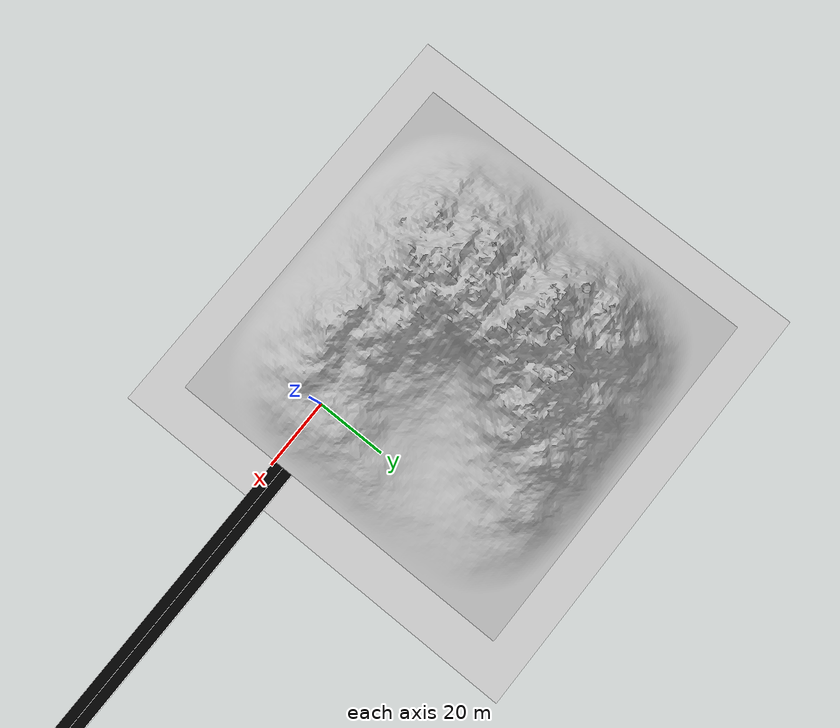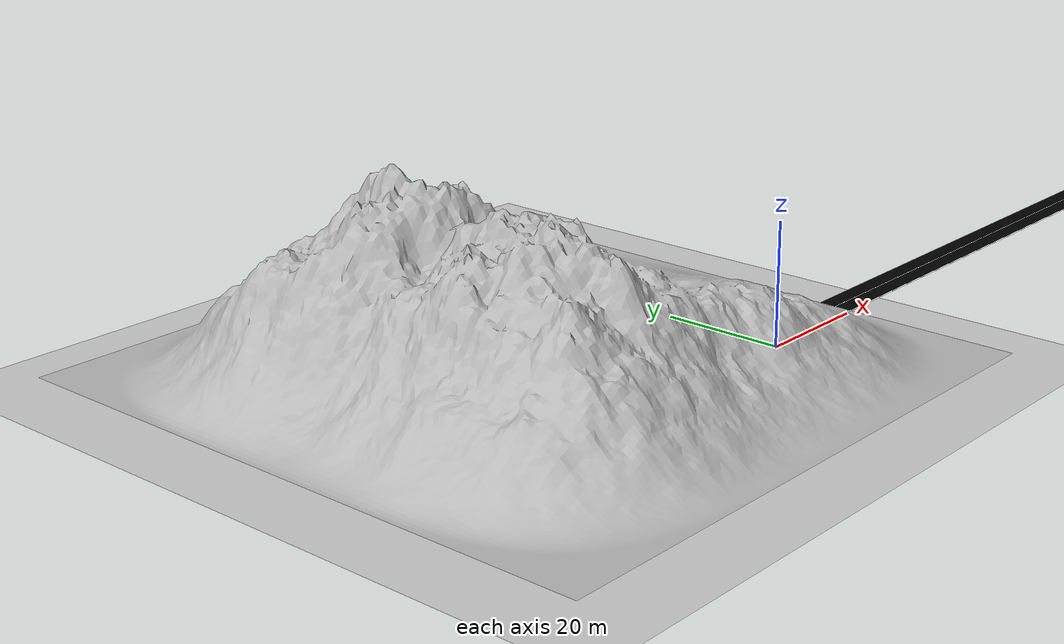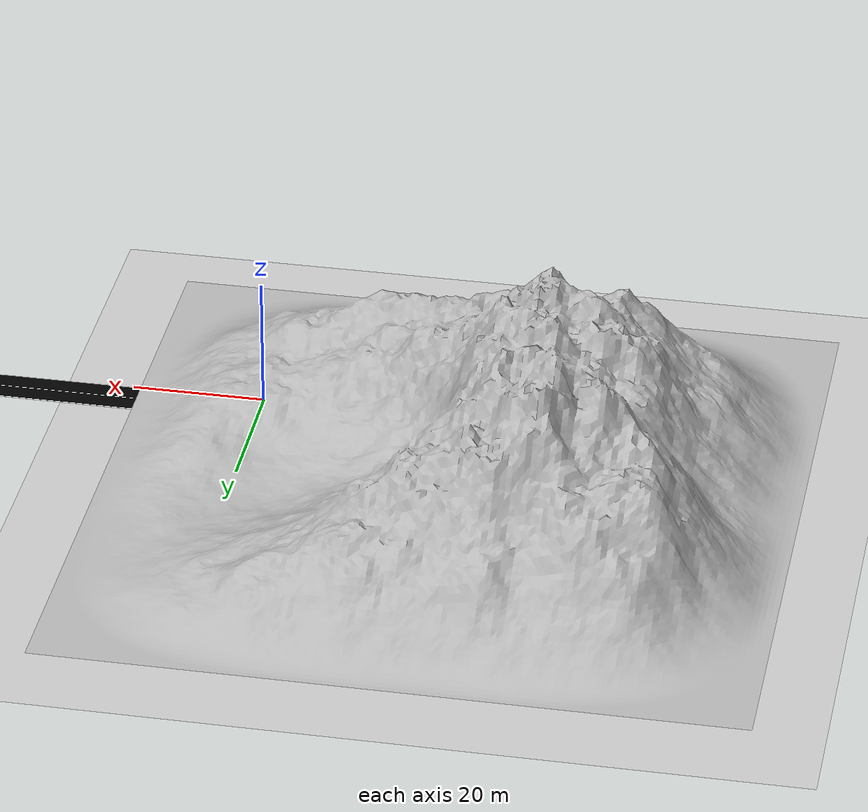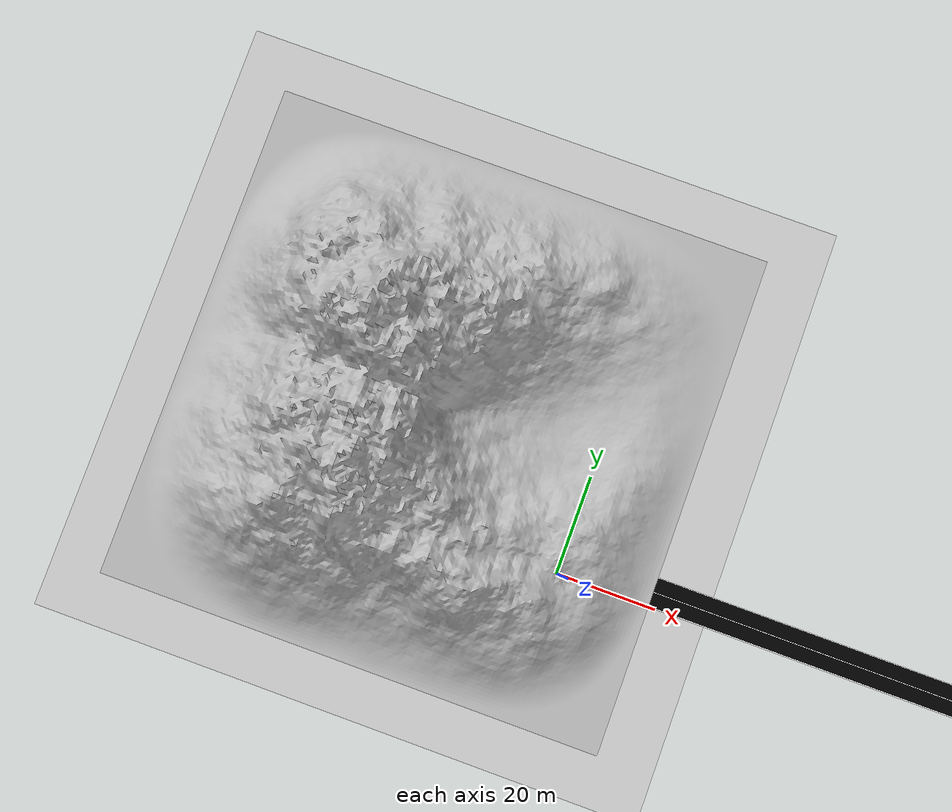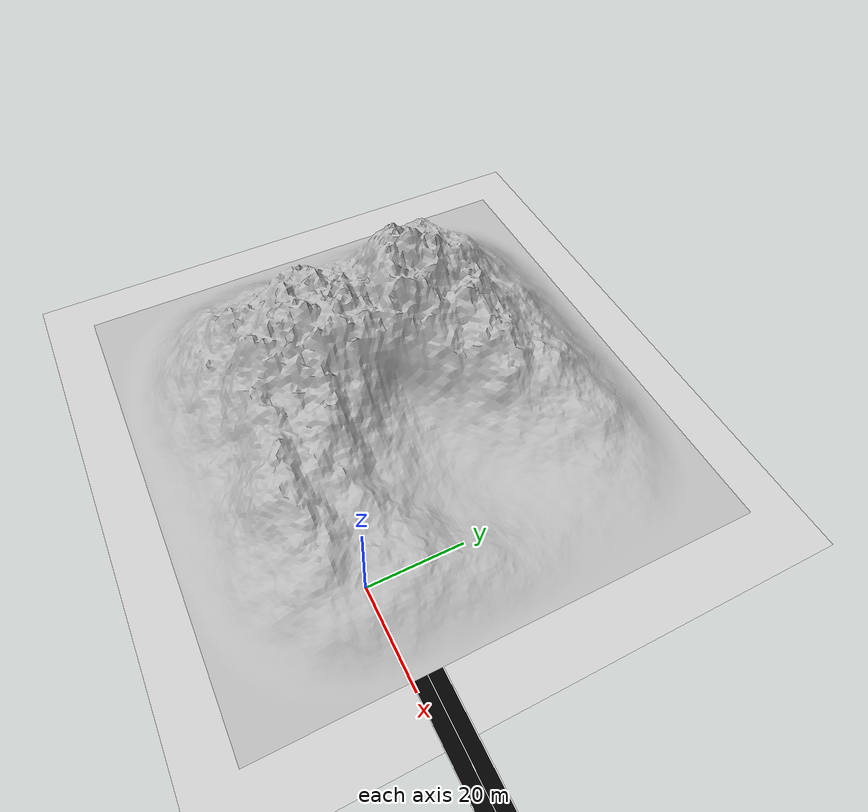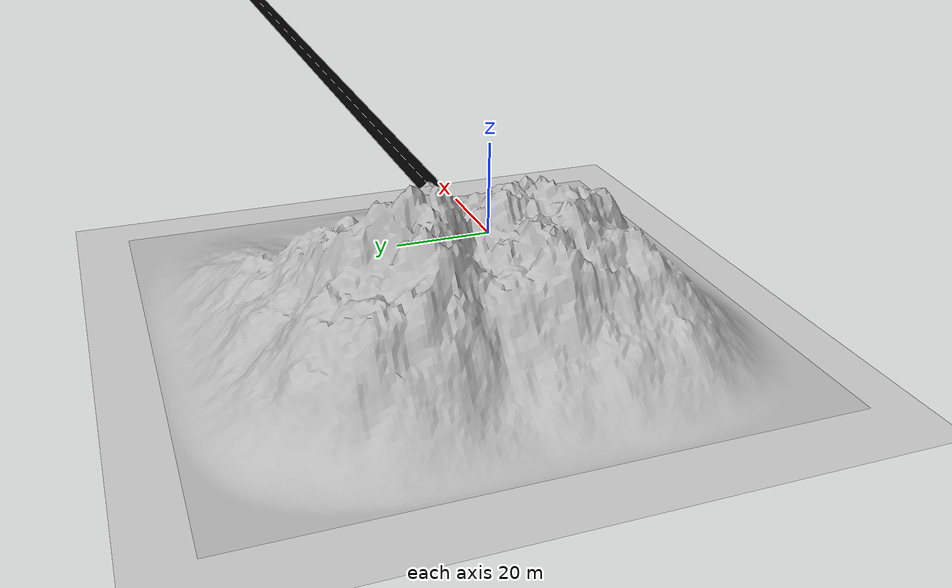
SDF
<?xml version="1.0" ?>
<sdf version="1.4">
  <world name="default">

    <include>
      <uri>model://ground_plane</uri>
    </include>
    <!-- A global light source -->
    <include>
      <uri>model://sun</uri>
    </include>

    <include>
      <name>Table1</name>
      <uri>model://Table</uri>
      <pose>0 0 0 0 0 0</pose>
    </include>

    <include>
      <name>Gebirge</name>
      <uri>model://Gebirge</uri>
      <pose>0 0 0 0 0 0</pose>
    </include>

    <!-- Focus camera on tall pendulum -->
    <gui fullscreen='0'>
      <camera name='user_camera'>
        <pose>4.927360 -4.376610 3.740080 0.000000 0.275643 2.356190</pose>
        <view_controller>orbit</view_controller>
      </camera>
    </gui>

  </world>
</sdf>

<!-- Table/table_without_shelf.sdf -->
<sdf version="1.4">
    <model name="road">
        <link name="road">
           <inertial>
                <mass>10000</mass>
                <inertia>
                    <ixx>1333333</ixx>
                    <ixy>0.0</ixy>
                    <ixz>0.0</ixz>
                    <iyy>4333333</iyy>
                    <iyz>0.0</iyz>
                    <izz>3000000</izz>
                </inertia>
            </inertial>
            <pose>0 0 0 0 0 0</pose>
            <collision name="collision_road">
                <geometry>
                    <mesh>
                        <uri>file://Table/meshes/path2.dae</uri>
                    </mesh>
                </geometry>
                <surface>
                 <friction>
                    <ode>
                        <mu>100</mu>
                        <mu2>50</mu2>
                    </ode>
                 </friction>
                </surface>
            </collision>
            <visual name="visual_road">
                <geometry>
                    <mesh>
                        <uri>file://Table/meshes/path2.dae</uri>
                    </mesh>
                </geometry>
            </visual>
        </link>
</model>
</sdf>

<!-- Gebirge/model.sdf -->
<sdf version="1.5">

 <model name="Gebirge">
    <static>true</static>
	<link name="body">
	<inertial>
	 <pose>1 2 5  2 2 2</pose>
	 <mass>30.0</mass>
	  <inertia>
	   <ixx>0.5</ixx>
           <ixy>0.5</ixy>
           <ixz>0.5</ixz>
           <iyy>0.5</iyy>
           <iyz>0.5</iyz>
           <izz>0.5</izz>
          </inertia>
          </inertial>

        <collision name="visual">
	  <geometry>
            <mesh>
		<uri>model://Gebirge/meshes/Gebirge.dae</uri>
	    </mesh>
          </geometry>

        </collision>

        <visual name="visual">
	  <geometry>
            <mesh><uri>model://Gebirge/meshes/Gebirge.dae</uri></mesh>
          </geometry>
	</visual>
      </link>
    </model>
</sdf>
